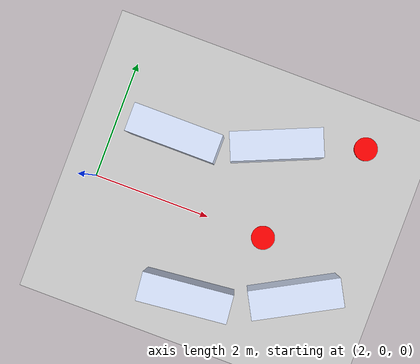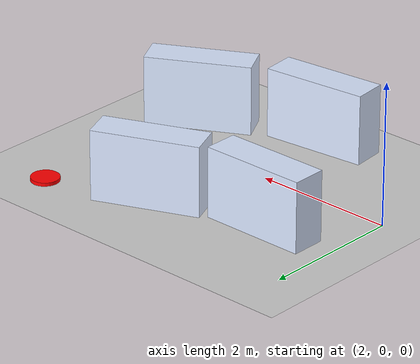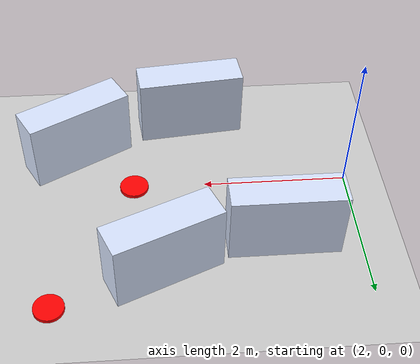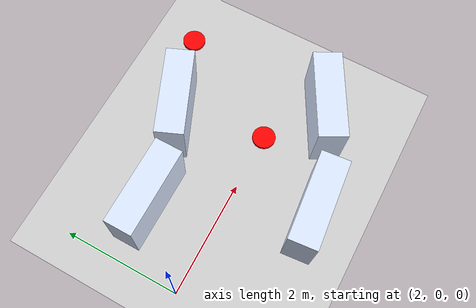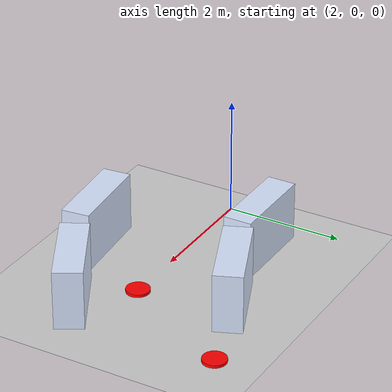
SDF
<?xml version="1.0" ?>
<sdf version="1.5">
    <world name="default">

        <physics type="ode">
        <max_step_size>0.0002</max_step_size>
        <real_time_factor>1</real_time_factor>
        <real_time_update_rate>5000</real_time_update_rate>
        <gravity>0 0 -9.81</gravity>
            <ode>
                <solver>
                <type>quick</type>
                <iters>50</iters>
                <sor>1.3</sor>
                </solver>
                <constraints>
                <cfm>0.0</cfm>
                <erp>0.2</erp>
                <contact_max_correcting_vel>10.0</contact_max_correcting_vel>
                <contact_surface_layer>0.001</contact_surface_layer>
                </constraints>
            </ode>
        </physics>

        <scene>
        <sky>
            <clouds>
                <speed>12</speed>
            </clouds>
        </sky>
        </scene>
        <!-- A global light source -->
        <include>
            <uri>model://sun</uri>
        </include>
        <!-- A ground plane -->
        <include>
          <uri>model://ground_plane</uri>

        </include>
        <!-- environment blocks, obstacles or stairs -->
        <model name="static_environment">
        <static>true</static>
            <link name="static_box">
                <pose>4.65 1.5 0.5 0 0 0.4</pose>
                <collision name="static_box_collision">
                    <geometry>
                        <box>
                            <size>1.5 0.48 1</size>
                        </box>
                    </geometry>
                </collision>
                <visual name="static_box_visual">
                    <geometry>
                        <box>
                            <size>1.5 0.48 1</size>
                        </box>
                    </geometry>
                    <material>
                        <ambient>0.55 0.65 0.8 1.0</ambient>
                        <diffuse>0.85 0.90 1.0 1.0</diffuse>
                    </material>
                </visual>
            </link>
        </model>

        <model name="static_environment1">
        <static>true</static>
            <link name="static_box">
                <pose>3.05 1.1 0.5 0 0 0</pose>
                <collision name="static_box_collision">
                    <geometry>
                        <box>
                            <size>1.5 0.48 1</size>
                        </box>
                    </geometry>
                </collision>
                <visual name="static_box_visual">
                    <geometry>
                        <box>
                            <size>1.5 0.48 1</size>
                        </box>
                    </geometry>
                    <material>
                        <ambient>0.55 0.65 0.8 1.0</ambient>
                        <diffuse>0.85 0.90 1.0 1.0</diffuse>
                    </material>
                </visual>
            </link>
        </model>

        <model name="static_environment2">
        <static>true</static>
            <link name="static_box">
                <pose>4.13 -1.3 0.5 0 0 0.1</pose>
                <collision name="static_box_collision">
                    <geometry>
                        <box>
                            <size>1.5 0.48 1</size>
                        </box>
                    </geometry>
                </collision>
                <visual name="static_box_visual">
                    <geometry>
                        <box>
                            <size>1.5 0.48 1</size>
                        </box>
                    </geometry>
                    <material>
                        <ambient>0.55 0.65 0.8 1.0</ambient>
                        <diffuse>0.85 0.90 1.0 1.0</diffuse>
                    </material>
                </visual>
            </link>
        </model>

        <model name="static_environment3">
        <static>true</static>
            <link name="static_box">
                <pose>5.8 -0.7 0.5 0 0 0.5</pose>
                <collision name="static_box_collision">
                    <geometry>
                        <box>
                            <size>1.5 0.48 1</size>
                        </box>
                    </geometry>
                </collision>
                <visual name="static_box_visual">
                    <geometry>
                        <box>
                            <size>1.5 0.48 1</size>
                        </box>
                    </geometry>
                    <material>
                        <ambient>0.55 0.65 0.8 1.0</ambient>
                        <diffuse>0.85 0.90 1.0 1.0</diffuse>
                    </material>
                </visual>
            </link>
        </model>

        <model name="red_marker1">
            <static>true</static>
            <pose>5 0.0 0.025 0 0 0</pose>
            <link name="marker_link">
                <!-- No collision tag: this visual does not participate in physical or laser collisions. -->
                <visual name="marker_visual">
                <geometry>
                    <cylinder>
                    <radius>0.2</radius>
                    <length>0.05</length>
                    </cylinder>
                </geometry>
                <material>
                    <ambient>0.8 0.1 0.1 1</ambient>
                    <diffuse>1 0 0 1</diffuse>
                </material>
                </visual>
            </link>
        </model>

        <model name="red_marker2">
            <static>true</static>
            <pose>6.1 2 0.025 0 0 0</pose>
            <link name="marker_link">
                <!-- No collision tag: this visual does not participate in physical or laser collisions. -->
                <visual name="marker_visual">
                <geometry>
                    <cylinder>
                    <radius>0.2</radius>
                    <length>0.05</length>
                    </cylinder>
                </geometry>
                <material>
                    <ambient>0.8 0.1 0.1 1</ambient>
                    <diffuse>1 0 0 1</diffuse>
                </material>
                </visual>
            </link>
        </model>

    </world>
</sdf>
